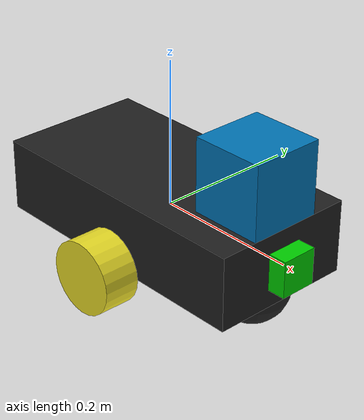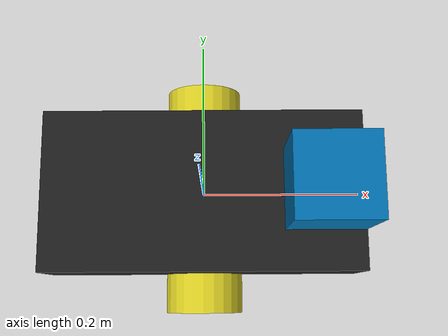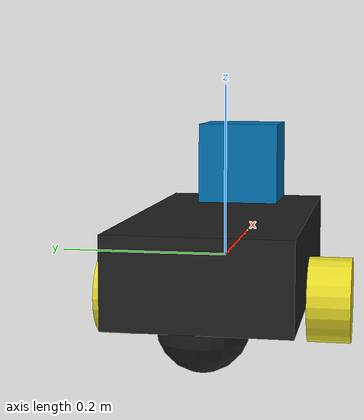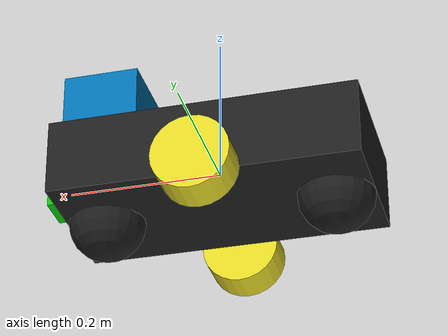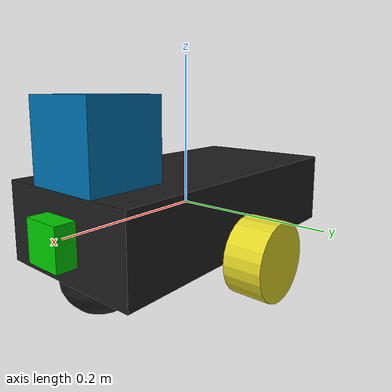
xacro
<?xml version="1.0"?>

<robot name="adrt" xmlns:xacro="http://www.ros.org/wiki/xacro">

    <xacro:property name="cameraSize" value="0.05" />
    <xacro:property name="cameraMass" value="0.1" />

    <xacro:include filename="$(find adrt_description)/urdf/materials.xacro"/>
    <xacro:include filename="$(find adrt_description)/urdf/adrt.gazebo"/>

  <joint name="left_wheel_joint" type="continuous">
  <origin xyz="0 0.125 -0.05" rpy="0.0 0.0 0.0"/>
  <parent link="chassis"/>
  <child link="left_wheel"/>
  <axis xyz="0.0 1 0.0" rpy="0 0 0"/>
  <limit effort="100000" velocity="1000"/>
  <joint_properties damping="1" friction="1" />
</joint>

    <joint name="right_wheel_joint" type="continuous">
  <origin xyz="0 -0.125 -0.05" rpy="0.0 0.0 0.0"/>
  <parent link="chassis"/>
  <child link="right_wheel"/>
  <axis xyz="0.0 1 0.0" rpy="0 0 0"/>
  <limit effort="100000" velocity="1000"/>
  <joint_properties damping="1" friction="1" />
</joint>

<!-- chassis -->
  <link name="chassis">
    <inertial>
      <mass value="15.0"/>
      <origin rpy="0  0  0" xyz="0  0  0"/>
      <inertia ixx="0.1" ixy="0" ixz="0" iyy="0.1" iyz="0" izz="0.1"/>
    </inertial>
    <collision name="chassis_collision">
      <origin rpy="0 0 0" xyz="0 0 0"/>
      <geometry>
        <box size=".4 .2 0.1"/>
      </geometry>
    </collision>
    <visual name="chassis_visual">
      <origin rpy="0 0 0" xyz="0 0 0"/>
      <geometry>
        <box size=".4 .2 0.1"/>
      </geometry>
    </visual>

    <collision name="caster_wheel_collision">
      <origin xyz="-0.15 0.0 -0.05" rpy="0.0 0.0 0.0"/>
      <geometry>
        <sphere radius="0.05"/>
      </geometry>
      <surface>
        <friction>
          <ode>
            <mu>0</mu>
            <mu2>0</mu2>
            <slip1>1.0</slip1>
            <slip2>1.0</slip2>
          </ode>
        </friction>
      </surface>
    </collision>

    <visual name="caster_wheel_visual">
      <origin xyz="-0.15 0.0 -0.05" rpy="0.0 0.0 0.0"/>
      <geometry>
        <sphere radius="0.05"/>
      </geometry>
    </visual>

        <collision name="back_caster_wheel_collision">
      <origin xyz="0.15 0.0 -0.05" rpy="0.0 0.0 0.0"/>
      <geometry>
        <sphere radius="0.05"/>
      </geometry>
      <surface>
        <friction>
          <ode>
            <mu>0</mu>
            <mu2>0</mu2>
            <slip1>1.0</slip1>
            <slip2>1.0</slip2>
          </ode>
        </friction>
      </surface>
    </collision>

    <visual name="back_caster_wheel_visual">
      <origin xyz="0.15 0.0 -0.05" rpy="0.0 0.0 0.0"/>
      <geometry>
        <sphere radius="0.05"/>
      </geometry>
    </visual>

  </link>

  <link name="left_wheel">
    <inertial>
      <origin xyz="0.0 0.0 0" rpy="1.5707 0 0"/>
      <mass value="5"/>
      <inertia ixx="0.1" ixy="0.0" ixz="0.0" iyy="0.1" iyz="0.0" izz="0.1"/>
    </inertial>
    <visual name="">
      <origin xyz="0.0 0.0 0" rpy="1.5707 0 0"/>
      <geometry>
        <cylinder radius="0.05" length="0.05"/>
      </geometry>
    </visual>
    <collision>
      <origin xyz="0 0.0 0" rpy="1.5707 0 0"/>
      <geometry>
        <cylinder radius="0.05" length="0.05"/>
      </geometry>
    </collision>
  </link>

<link name="right_wheel">
    <inertial>
      <origin xyz="0.0 0.0 0" rpy="1.5707 0 0"/>
      <mass value="5"/>
      <inertia ixx="0.1" ixy="0.0" ixz="0.0" iyy="0.1" iyz="0.0" izz="0.1"/>
    </inertial>
    <visual name="">
      <origin xyz="0.0 0.0 0" rpy="1.5707 0 0"/>
      <geometry>
        <cylinder radius="0.05" length="0.05"/>
      </geometry>
    </visual>
    <collision>
      <origin xyz="0 0.0 0" rpy="1.5707 0 0"/>
      <geometry>
        <cylinder radius="0.05" length="0.05"/>
      </geometry>
    </collision>
  </link>

  <!-- camera_joint -->
  <joint name="camera_joint" type="fixed">
    <axis xyz="0 1 0" />
    <origin xyz="0.2 0 0" rpy="0 0 0"/>
    <parent link="chassis"/>
    <child link="camera"/>
  </joint>
  <!-- camera_joint -->

  <!-- Camera_link-->
  <link name="camera">
    <collision>
      <origin xyz="0 0 0" rpy="0 0 0"/>
      <geometry>
    <box size="${cameraSize} ${cameraSize} ${cameraSize}"/>
      </geometry>
    </collision>

    <visual>
      <origin xyz="0 0 0" rpy="0 0 0"/>
      <geometry>
    <box size="${cameraSize} ${cameraSize} ${cameraSize}"/>
      </geometry>
      <material name="green"/>
    </visual>

    <inertial>
      <mass value="${cameraMass}" />
      <origin xyz="0 0 0" rpy="0 0 0"/>
      <box_inertia m="${cameraMass}" x="${cameraSize}" y="${cameraSize}" z="${cameraSize}" />
      <inertia ixx="1e-6" ixy="0" ixz="0" iyy="1e-6" iyz="0" izz="1e-6" />
    </inertial>
  </link>
  <!-- Camera_link -->

<!-- hokuyo_joint -->
<joint name="hokuyo_joint" type="fixed">
    <axis xyz="0 1 0" />
    <origin xyz="0.15 0 0.1" rpy="0 0 0"/>
    <parent link="chassis"/>
    <child link="hokuyo_link"/>
  </joint>
<!-- hokuyo_joint -->

<!-- Hokuyo_link -->
  <link name="hokuyo_link">
    <collision>
      <origin xyz="0 0 0" rpy="0 0 0"/>
      <geometry>
    <box size="0.1 0.1 0.1"/>
      </geometry>
    </collision>

    <visual>
      <origin xyz="0 0 0" rpy="0 0 0"/>
      <geometry>
          <box size="0.1 0.1 0.1"/>
      </geometry>
    </visual>

    <inertial>
      <mass value="1e-5" />
      <origin xyz="0 0 0" rpy="0 0 0"/>
      <inertia ixx="1e-6" ixy="0" ixz="0" iyy="1e-6" iyz="0" izz="1e-6" />
    </inertial>
  </link>
<!-- hokuyo_link -->

</robot>

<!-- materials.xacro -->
<robot>

    <material name="black">
        <color rgba="0.0 0.0 0.0 1.0"/>
    </material>

    <material name="blue">
        <color rgba="0.0 0.0 0.8 1.0"/>
    </material>

    <material name="green">
        <color rgba="0.0 0.8 0.0 1.0"/>
    </material>

    <material name="grey">
        <color rgba="0.2 0.2 0.2 1.0"/>
    </material>

    <material name="orange">
        <color rgba="${255/255} ${108/255} ${10/255} 1.0"/>
    </material>

    <material name="brown">
        <color rgba="${222/255} ${207/255} ${195/255} 1.0"/>
    </material>

    <material name="red">
        <color rgba="0.8 0.0 0.0 1.0"/>
    </material>

    <material name="white">
        <color rgba="1.0 1.0 1.0 1.0"/>
    </material>

</robot>
